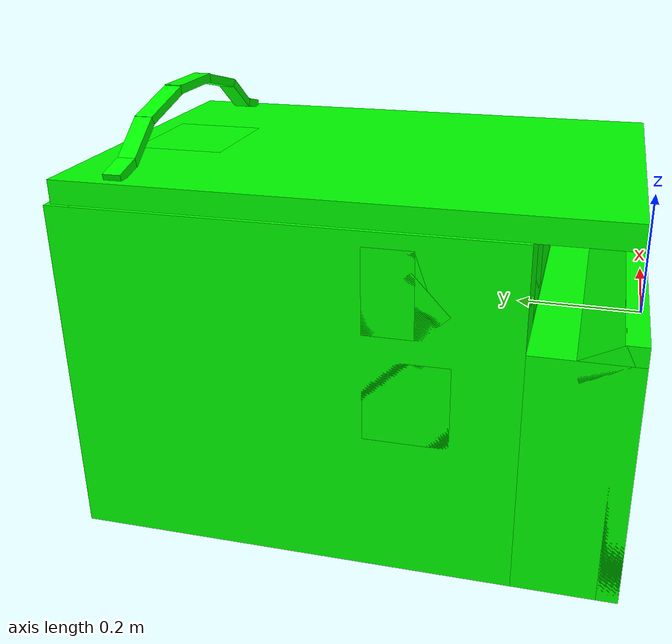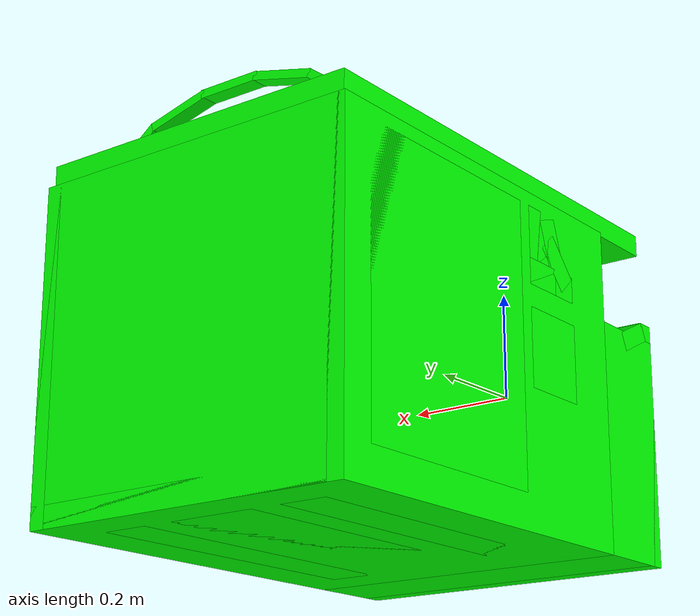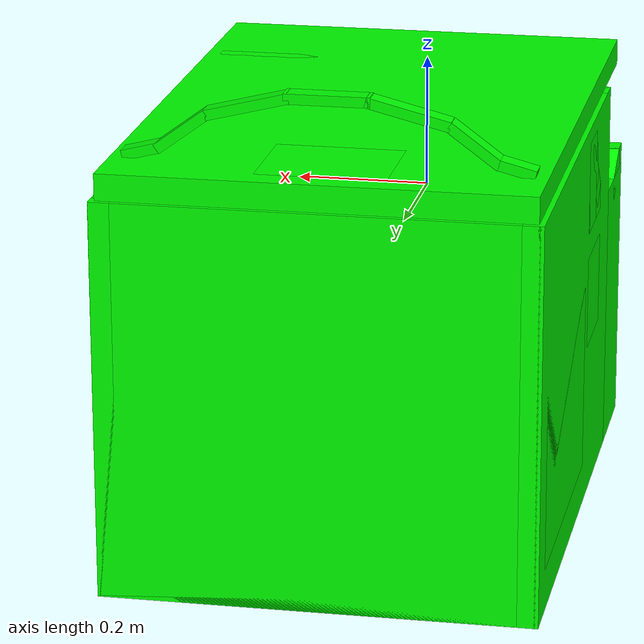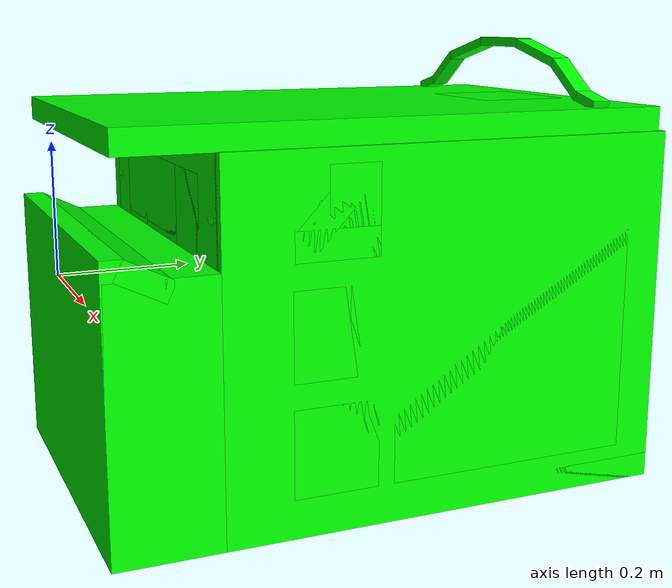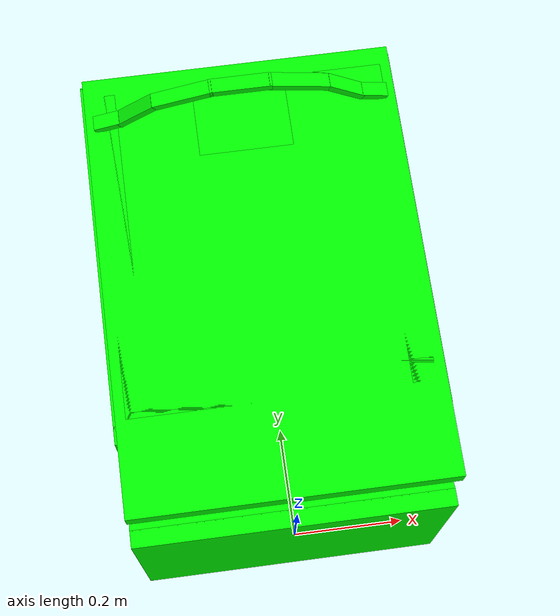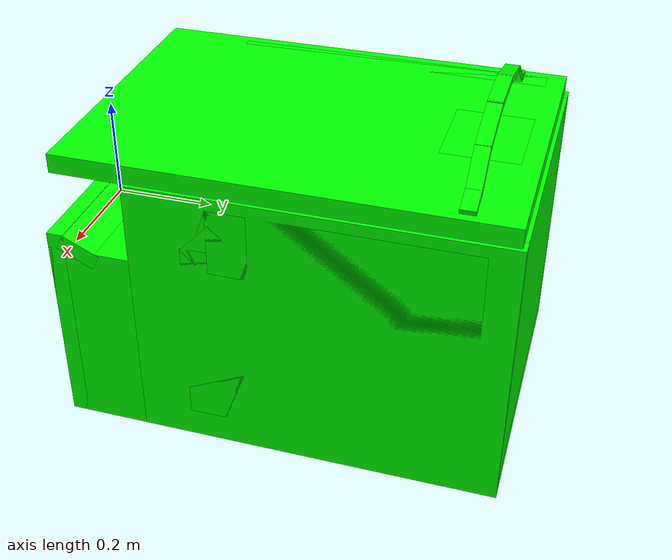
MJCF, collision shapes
<mujoco model="dishwasher_FP1">
  <compiler autolimits="true" boundmass="0.01" angle="radian"/>
  <default>
    <default class="/">
      <default class="__VISUAL_MJT__">
        <geom contype="0" conaffinity="0" group="0"/>
      </default>
      <default class="__STRUCTURAL_MJT__">
        <geom contype="8" conaffinity="15" group="4" friction="0.90000000000000002 0.90000000000000002 0.001" solref="0.025000000000000001 1" solimp="0.998 0.998 0.001"/>
      </default>
      <default class="__DYNAMIC_MJT__">
        <geom contype="1" conaffinity="15" group="4" friction="0.90000000000000002 0.90000000000000002 0.001" solref="0.025000000000000001 1" solimp="0.998 0.998 0.001"/>
      </default>
    </default>
  </default>
  <asset>
    <material name="material_FloorKitchen1Texturetest_DefaultMaterial_MetallicSmoothness_mat" class="/" specular="0.5" shininess="0.5" rgba="1 1 1 1"/>
    <texture name="HammeredMetal_AlbedoTransparency" type="2d" file="HammeredMetal_MetallicSmoothness.png"/>
    <material name="material_HammeredMetal_AlbedoTransparency" class="/" texture="HammeredMetal_AlbedoTransparency" specular="0.5" shininess="0.5" rgba="1 1 1 1"/>
    <mesh name="dishwasher_FP1_dishwasher_FP1_6ce43914_0" class="/" file="dishwasher_FP1_dishwasher_FP1_6ce43914/dishwasher_FP1_dishwasher_FP1_6ce43914_0.obj" scale="1 1 1" inertia="shell"/>
    <mesh name="dishwasher_FP1_dishwasher_FP1_6ce43914_1" class="/" file="dishwasher_FP1_dishwasher_FP1_6ce43914/dishwasher_FP1_dishwasher_FP1_6ce43914_1.obj" scale="1 1 1" inertia="shell"/>
    <mesh name="dishwasher_FP1_dishwasher_door_FP1_95ee9ec4_0" class="/" file="dishwasher_FP1_dishwasher_door_FP1_95ee9ec4/dishwasher_FP1_dishwasher_door_FP1_95ee9ec4_0.obj" scale="1 1 1" inertia="legacy"/>
    <mesh name="dishwasher_FP1_dishwasher_door_FP1_95ee9ec4_1" class="/" file="dishwasher_FP1_dishwasher_door_FP1_95ee9ec4/dishwasher_FP1_dishwasher_door_FP1_95ee9ec4_1.obj" scale="1 1 1" inertia="legacy"/>
    <mesh name="dishwasher_FP1_dishwasher_FP1_door_handle" class="/" file="dishwasher_FP1_dishwasher_FP1_door_handle/dishwasher_FP1_dishwasher_FP1_door_handle.obj" scale="1 1 1" inertia="legacy"/>
  </asset>
  <worldbody>
    <body name="dishwasher_FP1">
      <body name="dishwasher_FP1_dishwasher_FP1_6ce43914" pos="-0 0 0" quat="1 0 0 0">
        <geom name="dishwasher_FP1_dishwasher_FP1_6ce43914_0" class="__VISUAL_MJT__" type="mesh" material="material_FloorKitchen1Texturetest_DefaultMaterial_MetallicSmoothness_mat" mesh="dishwasher_FP1_dishwasher_FP1_6ce43914_0"/>
        <geom name="dishwasher_FP1_dishwasher_FP1_6ce43914_1" class="__VISUAL_MJT__" type="mesh" material="material_HammeredMetal_AlbedoTransparency" mesh="dishwasher_FP1_dishwasher_FP1_6ce43914_1"/>
        <site name="dishwasher_FP1_dishwasher_FP1_6ce43914_Receptacle_0" class="/" type="box" rgba="1 0 0 1" size="0.27105516195297241 0.31984221935272217 0.25063818693161011" pos="-7.0742487423558487e-09 0.51501363515853882 -0.059343107044696808" quat="0 1 0 0"/>
        <geom name="dishwasher_FP1_dishwasher_FP1_6ce43914_PrimitiveCollider_0" class="__DYNAMIC_MJT__" type="box" size="0.29983967542648315 0.020020604133605957 0.27773982286453247" rgba="0 1 0 1" pos="-8.129305228976591e-09 0.85043835639953613 -0.06819356232881546" quat="0 1 0 0"/>
        <geom name="dishwasher_FP1_dishwasher_FP1_6ce43914_PrimitiveCollider_1" class="__DYNAMIC_MJT__" type="box" size="0.01443733274936676 0.35467389225959778 0.27773982286453247" rgba="0 1 0 1" pos="-0.2854025661945343 0.5157850980758667 -0.068193532526493073" quat="0 1 0 0"/>
        <geom name="dishwasher_FP1_dishwasher_FP1_6ce43914_PrimitiveCollider_2" class="__DYNAMIC_MJT__" type="box" size="0.014437317848205566 0.35467389225959778 0.27773982286453247" rgba="0 1 0 1" pos="0.28540253639221191 0.5157850980758667 -0.068193480372428894" quat="0 1 0 0"/>
        <geom name="dishwasher_FP1_dishwasher_FP1_6ce43914_PrimitiveCollider_3" class="__DYNAMIC_MJT__" type="box" size="0.29983967542648315 0.017494887113571167 0.27773982286453247" rgba="0 1 0 1" pos="-8.129305228976591e-09 0.1786060631275177 -0.06819356232881546" quat="0 1 0 0"/>
        <geom name="dishwasher_FP1_dishwasher_FP1_6ce43914_PrimitiveCollider_4" class="__DYNAMIC_MJT__" type="box" size="0.29983967542648315 0.35467389225959778 0.018598899245262146" rgba="0 1 0 1" pos="2.0583335924584389e-08 0.5157850980758667 -0.32733455300331116" quat="0 1 0 0"/>
        <geom name="dishwasher_FP1_dishwasher_FP1_6ce43914_PrimitiveCollider_5" class="__DYNAMIC_MJT__" type="box" size="0.29983967542648315 0.085286259651184082 0.19802942872047424" rgba="0 1 0 1" pos="-1.7631521131988848e-08 0.084891080856323242 -0.1479039341211319" quat="0 1 0 0"/>
        <geom name="dishwasher_FP1_dishwasher_FP1_6ce43914_PrimitiveCollider_6" class="__DYNAMIC_MJT__" type="box" size="0.29983967542648315 0.016519904136657715 0.2131706178188324" rgba="0 1 0 1" pos="-1.5826557842046896e-08 0.0161246657371521 -0.13276280462741852" quat="0 1 0 0"/>
        <geom name="dishwasher_FP1_dishwasher_FP1_6ce43914_PrimitiveCollider_7" class="__DYNAMIC_MJT__" type="box" size="0.29983973503112793 0.016519904136657715 0.039310067892074585" rgba="0 1 0 1" pos="5.7686833088155254e-09 0.059091828763484955 0.048391230404376984" quat="-0.53068281980485221 0.84757049545390084 0 0"/>
        <geom name="dishwasher_FP1_dishwasher_FP1_6ce43914_PrimitiveCollider_8" class="__DYNAMIC_MJT__" type="box" size="0.020826995372772217 0.19645507633686066 0.23666849732398987" rgba="0 1 0 1" pos="-0.27901294827461243 0.61491876840591431 -0.049939606338739395" quat="0 1 0 0"/>
        <geom name="dishwasher_FP1_dishwasher_FP1_6ce43914_PrimitiveCollider_9" class="__DYNAMIC_MJT__" type="box" size="0.016643822193145752 0.14283430576324463 0.064397558569908142" rgba="0 1 0 1" pos="-0.26570269465446472 0.64344042539596558 0.096471592783927917" quat="0 1 0 0"/>
        <geom name="dishwasher_FP1_dishwasher_FP1_6ce43914_PrimitiveCollider_10" class="__DYNAMIC_MJT__" type="box" size="0.016643822193145752 0.14283430576324463 0.064017169177532196" rgba="0 1 0 1" pos="-0.26570266485214233 0.64344042539596558 -0.19673143327236176" quat="0 1 0 0"/>
        <geom name="dishwasher_FP1_dishwasher_FP1_6ce43914_PrimitiveCollider_11" class="__DYNAMIC_MJT__" type="box" size="0.016643822193145752 0.10670685768127441 0.064777784049510956" rgba="0 1 0 1" pos="-0.26570269465446472 0.67956787347793579 -0.049179289489984512" quat="0 1 0 0"/>
        <geom name="dishwasher_FP1_dishwasher_FP1_6ce43914_PrimitiveCollider_12" class="__DYNAMIC_MJT__" type="box" size="0.016643822193145752 0.019620701670646667 0.21213367581367493" rgba="0 1 0 1" pos="-0.26570269465446472 0.46470457315444946 -0.049939963966608047" quat="0 1 0 0"/>
        <geom name="dishwasher_FP1_dishwasher_FP1_6ce43914_PrimitiveCollider_13" class="__DYNAMIC_MJT__" type="box" size="0.016643822193145752 0.031789928674697876 0.013741768896579742" rgba="0 1 0 1" pos="-0.2657027542591095 0.53011429309844971 -0.049939963966608047" quat="0 1 0 0"/>
        <geom name="dishwasher_FP1_dishwasher_FP1_6ce43914_PrimitiveCollider_14" class="__DYNAMIC_MJT__" type="box" size="0.016643824055790901 0.031789932399988174 0.013741768896579742" rgba="0 1 0 1" pos="-0.2657027542591095 0.53011429309844971 -0.049939963966608047" quat="-0.38268337820552345 0.92387955494491192 0 0"/>
        <geom name="dishwasher_FP1_dishwasher_FP1_6ce43914_PrimitiveCollider_15" class="__DYNAMIC_MJT__" type="box" size="0.016643824055790901 0.03178994357585907 0.013741769827902317" rgba="0 1 0 1" pos="-0.2657027542591095 0.53011429309844971 -0.049939963966608047" quat="-0.70710678118654757 0.70710678118654757 0 0"/>
        <geom name="dishwasher_FP1_dishwasher_FP1_6ce43914_PrimitiveCollider_16" class="__DYNAMIC_MJT__" type="box" size="0.016643824055790901 0.03178994357585907 0.013741769827902317" rgba="0 1 0 1" pos="-0.2657027542591095 0.53011429309844971 -0.049939963966608047" quat="-0.92387955494491181 0.38268337820552339 0 0"/>
        <geom name="dishwasher_FP1_dishwasher_FP1_6ce43914_PrimitiveCollider_17" class="__DYNAMIC_MJT__" type="box" size="0.020826995372772217 0.065255388617515564 0.066299013793468475" rgba="0 1 0 1" pos="-0.27901273965835571 0.32780057191848755 -0.22030913829803467" quat="0 1 0 0"/>
        <geom name="dishwasher_FP1_dishwasher_FP1_6ce43914_PrimitiveCollider_18" class="__DYNAMIC_MJT__" type="box" size="0.020826995372772217 0.065255388617515564 0.066293187439441681" rgba="0 1 0 1" pos="-0.27901294827461243 0.32780057191848755 -0.049939606338739395" quat="0 1 0 0"/>
        <geom name="dishwasher_FP1_dishwasher_FP1_6ce43914_PrimitiveCollider_19" class="__DYNAMIC_MJT__" type="box" size="0.020826995372772217 0.038254871964454651 0.066299065947532654" rgba="0 1 0 1" pos="-0.27901294827461243 0.35480105876922607 0.12042991816997528" quat="0 1 0 0"/>
        <geom name="dishwasher_FP1_dishwasher_FP1_6ce43914_PrimitiveCollider_20" class="__DYNAMIC_MJT__" type="box" size="0.020826995372772217 0.064114540815353394 0.022185496985912323" rgba="0 1 0 1" pos="-0.27901294827461243 0.32894140481948853 0.076316282153129578" quat="0 1 0 0"/>
        <geom name="dishwasher_FP1_dishwasher_FP1_6ce43914_PrimitiveCollider_21" class="__DYNAMIC_MJT__" type="box" size="0.020826995372772217 0.041565045714378357 0.022185496985912323" rgba="0 1 0 1" pos="-0.27901294827461243 0.3098272979259491 0.10993508994579315" quat="-0.40084699379463939 0.91614501448504337 0 0"/>
        <geom name="dishwasher_FP1_dishwasher_FP1_6ce43914_PrimitiveCollider_22" class="__DYNAMIC_MJT__" type="box" size="0.020826993510127068 0.041565053164958954 0.022185493260622025" rgba="0 1 0 1" pos="-0.27901294827461243 0.32502377033233643 0.13882772624492645" quat="-0.58201371131449975 0.8131789715935368 0 0"/>
        <geom name="dishwasher_FP1_dishwasher_FP1_6ce43914_PrimitiveCollider_23" class="__DYNAMIC_MJT__" type="box" size="0.020826995372772217 0.19645507633686066 0.23666849732398987" rgba="0 1 0 1" pos="0.27901291847229004 0.61491876840591431 -0.049939673393964767" quat="0 1 0 0"/>
        <geom name="dishwasher_FP1_dishwasher_FP1_6ce43914_PrimitiveCollider_24" class="__DYNAMIC_MJT__" type="box" size="0.016643822193145752 0.14283430576324463 0.064397558569908142" rgba="0 1 0 1" pos="0.26570269465446472 0.64344042539596558 0.096471525728702545" quat="0 1 0 0"/>
        <geom name="dishwasher_FP1_dishwasher_FP1_6ce43914_PrimitiveCollider_25" class="__DYNAMIC_MJT__" type="box" size="0.016643822193145752 0.14283430576324463 0.064017169177532196" rgba="0 1 0 1" pos="0.26570272445678711 0.64344042539596558 -0.19673150777816772" quat="0 1 0 0"/>
        <geom name="dishwasher_FP1_dishwasher_FP1_6ce43914_PrimitiveCollider_26" class="__DYNAMIC_MJT__" type="box" size="0.016643822193145752 0.10670685768127441 0.064777784049510956" rgba="0 1 0 1" pos="0.26570272445678711 0.67956787347793579 -0.049179352819919586" quat="0 1 0 0"/>
        <geom name="dishwasher_FP1_dishwasher_FP1_6ce43914_PrimitiveCollider_27" class="__DYNAMIC_MJT__" type="box" size="0.016643822193145752 0.019620701670646667 0.21213367581367493" rgba="0 1 0 1" pos="0.26570272445678711 0.46470457315444946 -0.049939908087253571" quat="0 1 0 0"/>
        <geom name="dishwasher_FP1_dishwasher_FP1_6ce43914_PrimitiveCollider_28" class="__DYNAMIC_MJT__" type="box" size="0.016643822193145752 0.031789928674697876 0.013741768896579742" rgba="0 1 0 1" pos="0.26570293307304382 0.53011429309844971 -0.049940027296543121" quat="0 1 0 0"/>
        <geom name="dishwasher_FP1_dishwasher_FP1_6ce43914_PrimitiveCollider_29" class="__DYNAMIC_MJT__" type="box" size="0.016643824055790901 0.031789932399988174 0.013741768896579742" rgba="0 1 0 1" pos="0.26570293307304382 0.53011429309844971 -0.049940027296543121" quat="-0.38268337820552345 0.92387955494491192 0 0"/>
        <geom name="dishwasher_FP1_dishwasher_FP1_6ce43914_PrimitiveCollider_30" class="__DYNAMIC_MJT__" type="box" size="0.016643824055790901 0.03178994357585907 0.013741769827902317" rgba="0 1 0 1" pos="0.26570293307304382 0.53011429309844971 -0.049940027296543121" quat="-0.70710678118654757 0.70710678118654757 0 0"/>
        <geom name="dishwasher_FP1_dishwasher_FP1_6ce43914_PrimitiveCollider_31" class="__DYNAMIC_MJT__" type="box" size="0.016643824055790901 0.031789947301149368 0.013741771690547466" rgba="0 1 0 1" pos="0.26570293307304382 0.53011429309844971 -0.049940027296543121" quat="-0.92387955494491181 0.38268337820552339 0 0"/>
        <geom name="dishwasher_FP1_dishwasher_FP1_6ce43914_PrimitiveCollider_32" class="__DYNAMIC_MJT__" type="box" size="0.020826995372772217 0.065255388617515564 0.066299013793468475" rgba="0 1 0 1" pos="0.27901291847229004 0.32780057191848755 -0.22030919790267944" quat="0 1 0 0"/>
        <geom name="dishwasher_FP1_dishwasher_FP1_6ce43914_PrimitiveCollider_33" class="__DYNAMIC_MJT__" type="box" size="0.020826995372772217 0.065255388617515564 0.066293187439441681" rgba="0 1 0 1" pos="0.27901291847229004 0.32780057191848755 -0.049939673393964767" quat="0 1 0 0"/>
        <geom name="dishwasher_FP1_dishwasher_FP1_6ce43914_PrimitiveCollider_34" class="__DYNAMIC_MJT__" type="box" size="0.020826995372772217 0.038254871964454651 0.066299065947532654" rgba="0 1 0 1" pos="0.27901291847229004 0.35480105876922607 0.12042985111474991" quat="0 1 0 0"/>
        <geom name="dishwasher_FP1_dishwasher_FP1_6ce43914_PrimitiveCollider_35" class="__DYNAMIC_MJT__" type="box" size="0.020826995372772217 0.064114540815353394 0.022185496985912323" rgba="0 1 0 1" pos="0.27901291847229004 0.32894140481948853 0.076316334307193756" quat="0 1 0 0"/>
        <geom name="dishwasher_FP1_dishwasher_FP1_6ce43914_PrimitiveCollider_36" class="__DYNAMIC_MJT__" type="box" size="0.020826995372772217 0.041565045714378357 0.022185496985912323" rgba="0 1 0 1" pos="0.27901297807693481 0.3098272979259491 0.10993526130914688" quat="-0.40084699379463939 0.91614501448504337 0 0"/>
        <geom name="dishwasher_FP1_dishwasher_FP1_6ce43914_PrimitiveCollider_37" class="__DYNAMIC_MJT__" type="box" size="0.020826993510127068 0.041565053164958954 0.022185493260622025" rgba="0 1 0 1" pos="0.27901291847229004 0.32502377033233643 0.13882778584957123" quat="-0.58201371131449975 0.8131789715935368 0 0"/>
        <geom name="dishwasher_FP1_dishwasher_FP1_6ce43914_PrimitiveCollider_38" class="__DYNAMIC_MJT__" type="box" size="0.20030507445335388 0.022438645362854004 0.10053692758083344" rgba="0 1 0 1" pos="-1.9100141912531399e-08 0.18354982137680054 -0.16022361814975739" quat="0 1 0 0"/>
        <geom name="dishwasher_FP1_dishwasher_FP1_6ce43914_PrimitiveCollider_39" class="__DYNAMIC_MJT__" type="box" size="0.056936051696538925 0.022438645362854004 0.21500393748283386" rgba="0 1 0 1" pos="0.14336909353733063 0.18354982137680054 -0.04575648158788681" quat="0 1 0 0"/>
        <geom name="dishwasher_FP1_dishwasher_FP1_6ce43914_PrimitiveCollider_40" class="__DYNAMIC_MJT__" type="box" size="0.20030507445335388 0.022438645362854004 0.055282581597566605" rgba="0 1 0 1" pos="1.3585676583716122e-08 0.18354982137680054 0.11396493017673492" quat="0 1 0 0"/>
        <geom name="dishwasher_FP1_dishwasher_FP1_6ce43914_PrimitiveCollider_41" class="__DYNAMIC_MJT__" type="box" size="0.057316556572914124 0.022438645362854004 0.21500393748283386" rgba="0 1 0 1" pos="-0.14298859238624573 0.18354982137680054 -0.045756567269563675" quat="0 1 0 0"/>
        <geom name="dishwasher_FP1_dishwasher_FP1_6ce43914_PrimitiveCollider_42" class="__DYNAMIC_MJT__" type="box" size="0.026548724621534348 0.034227609634399414 0.01230977475643158" rgba="0 1 0 1" pos="-6.24140739091672e-11 0.19533878564834595 -0.00052356725791469216" quat="0 1 0 0"/>
        <geom name="dishwasher_FP1_dishwasher_FP1_6ce43914_PrimitiveCollider_43" class="__DYNAMIC_MJT__" type="box" size="0.026548732072114944 0.034227609634399414 0.012309777550399303" rgba="0 1 0 1" pos="-6.24140739091672e-11 0.19533878564834595 -0.00052356725791469216" quat="0 0.92387955494491192 0 0.38268337820552345"/>
        <geom name="dishwasher_FP1_dishwasher_FP1_6ce43914_PrimitiveCollider_44" class="__DYNAMIC_MJT__" type="box" size="0.026548737660050392 0.034227609634399414 0.012309780344367027" rgba="0 1 0 1" pos="-6.24140739091672e-11 0.19533878564834595 -0.00052356725791469216" quat="0 0.70710678118654757 0 0.70710678118654757"/>
        <geom name="dishwasher_FP1_dishwasher_FP1_6ce43914_PrimitiveCollider_45" class="__DYNAMIC_MJT__" type="box" size="0.026548732072114944 0.034227609634399414 0.012309777550399303" rgba="0 1 0 1" pos="-6.24140739091672e-11 0.19533878564834595 -0.00052356725791469216" quat="0 0.38268337820552339 0 0.92387955494491181"/>
        <geom name="dishwasher_FP1_dishwasher_FP1_6ce43914_PrimitiveCollider_46" class="__DYNAMIC_MJT__" type="box" size="0.077756509184837341 0.27734750509262085 0.028106093406677246" rgba="0 1 0 1" pos="2.171668000983118e-08 0.52034848928451538 -0.31782737374305725" quat="0 1 0 0"/>
        <geom name="dishwasher_FP1_dishwasher_FP1_6ce43914_PrimitiveCollider_47" class="__DYNAMIC_MJT__" type="box" size="0.040482655167579651 0.27734750509262085 0.028106093406677246" rgba="0 1 0 1" pos="-0.17189067602157593 0.52034848928451538 -0.31782737374305725" quat="0 1 0 0"/>
        <geom name="dishwasher_FP1_dishwasher_FP1_6ce43914_PrimitiveCollider_48" class="__DYNAMIC_MJT__" type="box" size="0.040862917900085449 0.27734750509262085 0.028106093406677246" rgba="0 1 0 1" pos="0.17151044309139252 0.52034848928451538 -0.31782740354537964" quat="0 1 0 0"/>
        <geom name="dishwasher_FP1_dishwasher_FP1_6ce43914_PrimitiveCollider_49" class="__DYNAMIC_MJT__" type="box" size="0.020826993510127068 0.02232876792550087 0.012267788872122765" rgba="0 1 0 1" pos="-0.26760020852088928 0.20152467489242554 0.12230865657329559" quat="-0.2942679921999527 0.95572294561060356 0 0"/>
        <geom name="dishwasher_FP1_dishwasher_FP1_6ce43914_PrimitiveCollider_50" class="__DYNAMIC_MJT__" type="box" size="0.020826995372772217 0.018268492072820663 0.012796147726476192" rgba="0 1 0 1" pos="-0.26760119199752808 0.22410942614078522 0.14566116034984589" quat="-0.50484945336814835 0.863207408120367 0 0"/>
        <geom name="dishwasher_FP1_dishwasher_FP1_6ce43914_PrimitiveCollider_51" class="__DYNAMIC_MJT__" type="box" size="0.020826993510127068 0.015048595145344734 0.012796144932508469" rgba="0 1 0 1" pos="-0.26760482788085938 0.23664289712905884 0.17330151796340942" quat="-0.61176353206793699 0.79104069480132455 0 0"/>
        <geom name="dishwasher_FP1_dishwasher_FP1_6ce43914_PrimitiveCollider_52" class="__DYNAMIC_MJT__" type="box" size="0.020826995372772217 0.014722957275807858 0.012796147726476192" rgba="0 1 0 1" pos="-0.26760011911392212 0.24050000309944153 0.19330590963363647" quat="-0.70710678118654757 0.70710678118654757 0 0"/>
        <geom name="dishwasher_FP1_dishwasher_FP1_6ce43914_PrimitiveCollider_53" class="__DYNAMIC_MJT__" type="box" size="0.020826993510127068 0.02232876792550087 0.012267788872122765" rgba="0 1 0 1" pos="0.26760035753250122 0.20152467489242554 0.12230871617794037" quat="-0.2942679921999527 0.95572294561060356 0 0"/>
        <geom name="dishwasher_FP1_dishwasher_FP1_6ce43914_PrimitiveCollider_54" class="__DYNAMIC_MJT__" type="box" size="0.020826995372772217 0.018268495798110962 0.012796147726476192" rgba="0 1 0 1" pos="0.2676013708114624 0.22410939633846283 0.14566121995449066" quat="-0.50484945336814835 0.863207408120367 0 0"/>
        <geom name="dishwasher_FP1_dishwasher_FP1_6ce43914_PrimitiveCollider_55" class="__DYNAMIC_MJT__" type="box" size="0.020826993510127068 0.015048595145344734 0.012796144932508469" rgba="0 1 0 1" pos="0.2676050066947937 0.23664291203022003 0.17330156266689301" quat="-0.61176353206793699 0.79104069480132455 0 0"/>
        <geom name="dishwasher_FP1_dishwasher_FP1_6ce43914_PrimitiveCollider_56" class="__DYNAMIC_MJT__" type="box" size="0.020826995372772217 0.014722957275807858 0.012796147726476192" rgba="0 1 0 1" pos="0.26760029792785645 0.24049997329711914 0.19330583512783051" quat="-0.70710678118654757 0.70710678118654757 0 0"/>
        <body name="dishwasher_FP1_dishwasher_door_FP1_95ee9ec4" pos="2.9802322387695312e-08 0.15832720696926117 0.19315162301063538" quat="1 0 0 0">
          <geom name="dishwasher_FP1_dishwasher_door_FP1_95ee9ec4_0" class="__VISUAL_MJT__" type="mesh" material="material_HammeredMetal_AlbedoTransparency" mesh="dishwasher_FP1_dishwasher_door_FP1_95ee9ec4_0"/>
          <geom name="dishwasher_FP1_dishwasher_door_FP1_95ee9ec4_1" class="__VISUAL_MJT__" type="mesh" material="material_FloorKitchen1Texturetest_DefaultMaterial_MetallicSmoothness_mat" mesh="dishwasher_FP1_dishwasher_door_FP1_95ee9ec4_1"/>
          <joint name="dishwasher_FP1_joint" class="/" type="hinge" pos="-0 0 0" axis="1 0 0" stiffness="0" range="0 1.5707963267948966" damping="0.10000000000000001" frictionloss="0"/>
          <geom name="dishwasher_FP1_dishwasher_door_FP1_95ee9ec4_PrimitiveCollider_0" class="__DYNAMIC_MJT__" type="box" size="0.29239392280578613 0.42153483629226685 0.018852027133107185" rgba="0 1 0 1" pos="4.0922714106272906e-09 0.28334635496139526 0.034328464418649673" quat="0 1 0 0"/>
          <geom name="dishwasher_FP1_dishwasher_door_FP1_95ee9ec4_PrimitiveCollider_1" class="__DYNAMIC_MJT__" type="box" size="0.27374818921089172 0.022862672805786133 0.025844307616353035" rgba="0 1 0 1" pos="3.2587195164524019e-09 0.64600861072540283 0.027336124330759048" quat="0 1 0 0"/>
          <geom name="dishwasher_FP1_dishwasher_door_FP1_95ee9ec4_PrimitiveCollider_2" class="__DYNAMIC_MJT__" type="box" size="0.021562695503234863 0.31606906652450562 0.025844307616353035" rgba="0 1 0 1" pos="0.2521856427192688 0.35280221700668335 0.027336094528436661" quat="0 1 0 0"/>
          <geom name="dishwasher_FP1_dishwasher_door_FP1_95ee9ec4_PrimitiveCollider_3" class="__DYNAMIC_MJT__" type="box" size="0.020164303481578827 0.31606906652450562 0.025844307616353035" rgba="0 1 0 1" pos="-0.2535841166973114 0.35280221700668335 0.027336154133081436" quat="0 1 0 0"/>
          <geom name="dishwasher_FP1_dishwasher_door_FP1_95ee9ec4_PrimitiveCollider_4" class="__DYNAMIC_MJT__" type="box" size="0.27374818921089172 0.02146419882774353 0.025844307616353035" rgba="0 1 0 1" pos="3.2587195164524019e-09 0.058197364211082458 0.027336124330759048" quat="0 1 0 0"/>
          <geom name="dishwasher_FP1_dishwasher_door_FP1_95ee9ec4_PrimitiveCollider_5" class="__DYNAMIC_MJT__" type="box" size="0.087981261312961578 0.073206543922424316 0.025844307616353035" rgba="0 1 0 1" pos="3.2587479381618323e-09 0.59566473960876465 0.02733636274933815" quat="0 1 0 0"/>
          <geom name="dishwasher_FP1_dishwasher_door_FP1_95ee9ec4_PrimitiveCollider_6" class="__DYNAMIC_MJT__" type="box" size="0.0093575417995452881 0.0092949196696281433 0.021369341760873795" rgba="0 1 0 1" pos="-0.25831207633018494 0.080239787697792053 -0.0055637056939303875" quat="0 1 0 0"/>
          <geom name="dishwasher_FP1_dishwasher_door_FP1_95ee9ec4_PrimitiveCollider_7" class="__DYNAMIC_MJT__" type="box" size="0.0093575436621904373 0.0092949196696281433 0.021369343623518944" rgba="0 1 0 1" pos="-0.25831213593482971 0.070585504174232483 -0.041716430336236954" quat="0.24573776439288142 0.96933634572896765 0 0"/>
          <geom name="dishwasher_FP1_dishwasher_door_FP1_95ee9ec4_PrimitiveCollider_8" class="__DYNAMIC_MJT__" type="box" size="0.0093575417995452881 0.0092949196696281433 0.019856061786413193" rgba="0 1 0 1" pos="-0.25831213593482971 0.047407224774360657 -0.067916728556156158" quat="0.47374636504104611 0.88066133196047391 0 0"/>
          <geom name="dishwasher_FP1_dishwasher_door_FP1_95ee9ec4_PrimitiveCollider_9" class="__DYNAMIC_MJT__" type="box" size="0.0093575417995452881 0.0092949271202087402 0.015812471508979797" rgba="0 1 0 1" pos="-0.25831213593482971 0.018221840262413025 -0.081715084612369537" quat="0.61875506398930769 0.78558396800570462 0 0"/>
          <geom name="dishwasher_FP1_dishwasher_door_FP1_95ee9ec4_PrimitiveCollider_10" class="__DYNAMIC_MJT__" type="box" size="0.0093575417995452881 0.0092949196696281433 0.021369341760873795" rgba="0 1 0 1" pos="0.25831213593482971 0.080239787697792053 -0.0055637676268815994" quat="0 1 0 0"/>
          <geom name="dishwasher_FP1_dishwasher_door_FP1_95ee9ec4_PrimitiveCollider_11" class="__DYNAMIC_MJT__" type="box" size="0.0093575436621904373 0.0092949196696281433 0.021369343623518944" rgba="0 1 0 1" pos="0.25831219553947449 0.070585504174232483 -0.041716374456882477" quat="0.24573776439288142 0.96933634572896765 0 0"/>
          <geom name="dishwasher_FP1_dishwasher_door_FP1_95ee9ec4_PrimitiveCollider_12" class="__DYNAMIC_MJT__" type="box" size="0.0093575417995452881 0.0092949196696281433 0.019856061786413193" rgba="0 1 0 1" pos="0.25831219553947449 0.047407224774360657 -0.067916668951511383" quat="0.47374636504104611 0.88066133196047391 0 0"/>
          <geom name="dishwasher_FP1_dishwasher_door_FP1_95ee9ec4_PrimitiveCollider_13" class="__DYNAMIC_MJT__" type="box" size="0.0093575417995452881 0.0092949271202087402 0.015812471508979797" rgba="0 1 0 1" pos="0.25831219553947449 0.018221840262413025 -0.081715025007724762" quat="0.61875506398930769 0.78558396800570462 0 0"/>
          <geom name="dishwasher_FP1_dishwasher_door_FP1_95ee9ec4_PrimitiveCollider_14" class="__DYNAMIC_MJT__" type="box" size="0.22416147589683533 0.1640327125787735 0.022580310702323914" rgba="0 1 0 1" pos="-1.5361223404397606e-09 0.4594724178314209 -0.012885930016636848" quat="0 1 0 0"/>
          <body name="dishwasher_FP1_dishwasher_FP1_door_handle" pos="2.9802322387695312e-08 0.60922515392303467 0.052261948585510254" quat="1 0 0 0">
            <geom name="dishwasher_FP1_dishwasher_FP1_door_handle" class="__VISUAL_MJT__" type="mesh" material="material_HammeredMetal_AlbedoTransparency" mesh="dishwasher_FP1_dishwasher_FP1_door_handle"/>
            <geom name="dishwasher_FP1_dishwasher_FP1_door_handle_PrimitiveCollider_0" class="__DYNAMIC_MJT__" type="box" size="0.057715125381946564 0.014158815145492554 0.0070663057267665863" rgba="0 1 0 1" pos="1.085599876660126e-08 0.00012111663818359375 0.091066725552082062" quat="0 1 0 0"/>
            <geom name="dishwasher_FP1_dishwasher_FP1_door_handle_PrimitiveCollider_1" class="__DYNAMIC_MJT__" type="box" size="0.057715125381946564 0.014158815145492554 0.0070663057267665863" rgba="0 1 0 1" pos="0.10706951469182968 0.00012111663818359375 0.077330708503723145" quat="0 0.99242725927590192 0 -0.12283376997439183"/>
            <geom name="dishwasher_FP1_dishwasher_FP1_door_handle_PrimitiveCollider_2" class="__DYNAMIC_MJT__" type="box" size="0.042268484830856323 0.014158815145492554 0.0070663057267665863" rgba="0 1 0 1" pos="0.19489142298698425 0.00012111663818359375 0.038973193615674973" quat="0 0.94988385887748827 0 -0.31260303044598287"/>
            <geom name="dishwasher_FP1_dishwasher_FP1_door_handle_PrimitiveCollider_3" class="__DYNAMIC_MJT__" type="box" size="0.024954658001661301 0.014158815145492554 0.0070663057267665863" rgba="0 1 0 1" pos="0.2515447735786438 0.00012111663818359375 0.0095861861482262611" quat="0 0.9921008493619754 0 -0.12544283437186537"/>
            <geom name="dishwasher_FP1_dishwasher_FP1_door_handle_PrimitiveCollider_4" class="__DYNAMIC_MJT__" type="box" size="0.057715132832527161 0.014158815145492554 0.0070663061924278736" rgba="0 1 0 1" pos="-0.10706973075866699 0.00012111663818359375 0.077330969274044037" quat="0 0.99242725927590192 0 0.12283376997439183"/>
            <geom name="dishwasher_FP1_dishwasher_FP1_door_handle_PrimitiveCollider_5" class="__DYNAMIC_MJT__" type="box" size="0.04226849228143692 0.014158815145492554 0.0070663066580891609" rgba="0 1 0 1" pos="-0.19489170610904694 0.00012111663818359375 0.038973715156316757" quat="0 0.94988385887748827 0 0.31260303044598287"/>
            <geom name="dishwasher_FP1_dishwasher_FP1_door_handle_PrimitiveCollider_6" class="__DYNAMIC_MJT__" type="box" size="0.02495465986430645 0.014158815145492554 0.0070663066580891609" rgba="0 1 0 1" pos="-0.25154498219490051 0.00012111663818359375 0.0095864841714501381" quat="0 0.9921008493619754 0 0.12544283437186537"/>
          </body>
        </body>
      </body>
    </body>
  </worldbody>
  <contact>
    <exclude name="//unnamed_contact_0" body1="dishwasher_FP1_dishwasher_door_FP1_95ee9ec4" body2="dishwasher_FP1_dishwasher_FP1_6ce43914"/>
  </contact>
</mujoco>
